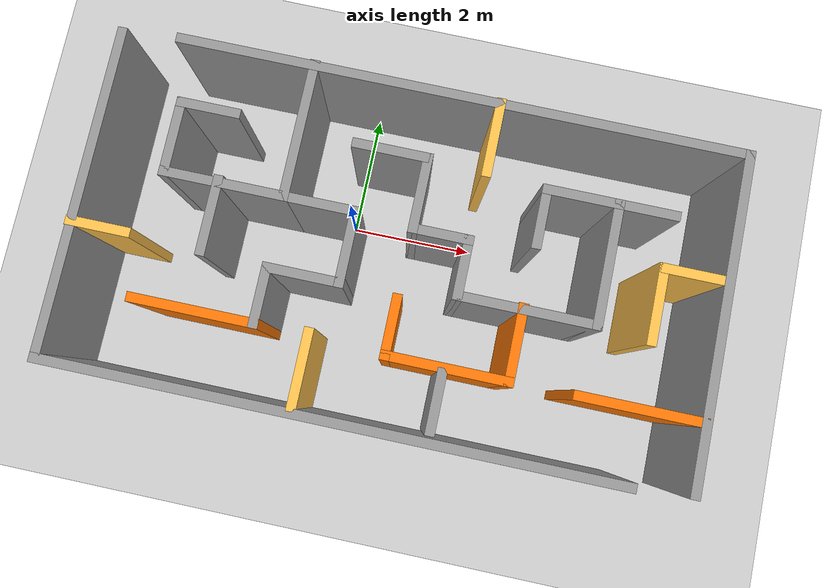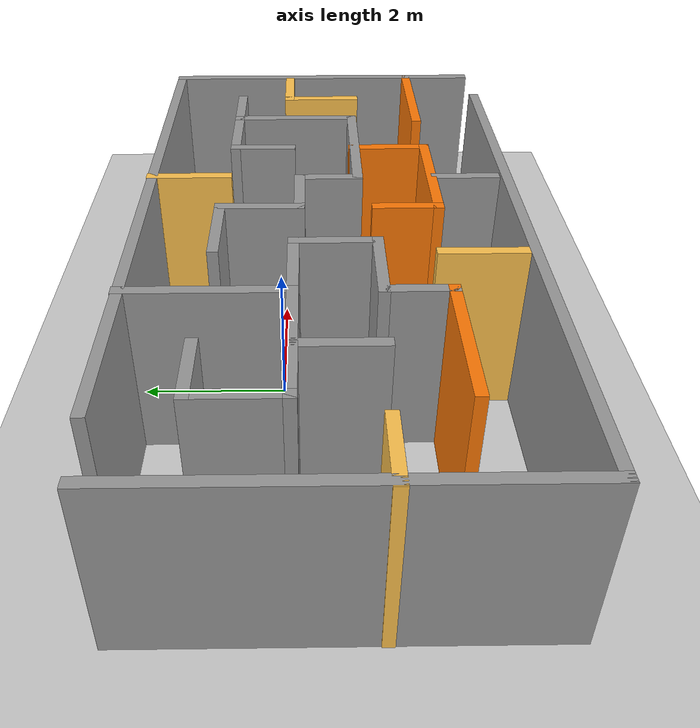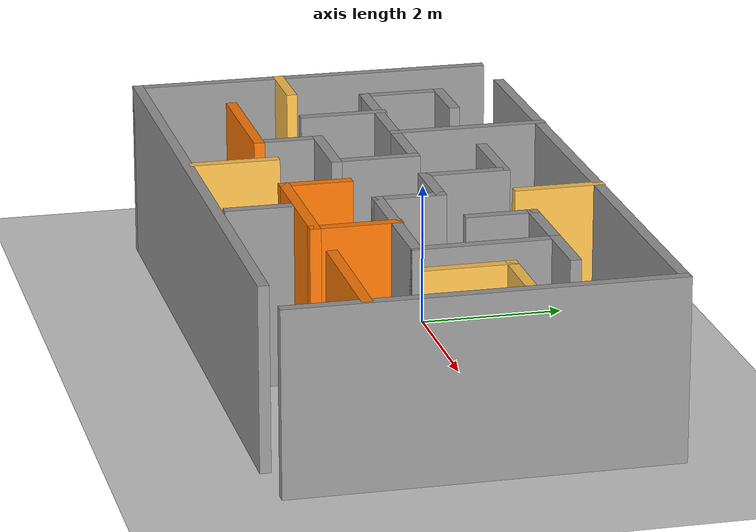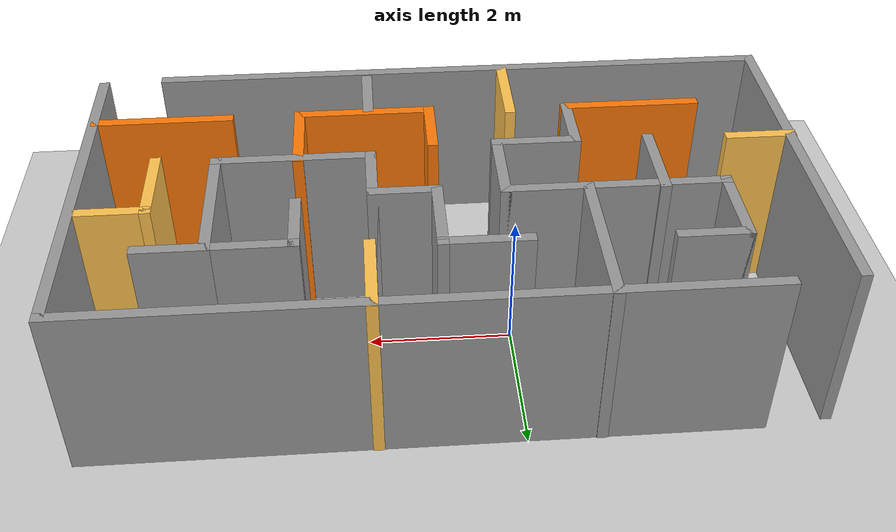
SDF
<sdf version="1.7">
 <world name="default">
  <light name="sun" type="directional">
   <pose>0 0 10 0 -0 0</pose>
   <diffuse>0.8 0.8 0.8 1</diffuse>
   <specular>0.2 0.2 0.2 1</specular>
   <attenuation>
    <range>1000</range>
    <constant>0.9</constant>
    <linear>0.01</linear>
    <quadratic>0.001</quadratic>
   </attenuation>
   <direction>-0.5 0.1 -0.9</direction>
   <spot><inner_angle>0</inner_angle><outer_angle>0</outer_angle><falloff>0</falloff></spot>
  </light>
  <model name="ground_plane">
   <static>1</static>
   <link name="link">
    <collision name="collision">
     <geometry><plane><normal>0 0 1</normal><size>100 100</size></plane></geometry>
     <surface>
      <contact><collide_bitmask>65535</collide_bitmask></contact>
      <friction><ode><mu>100</mu><mu2>50</mu2></ode></friction>
     </surface>
    </collision>
    <visual name="visual">
     <cast_shadows>0</cast_shadows>
     <geometry><plane><normal>0 0 1</normal><size>100 100</size></plane></geometry>
     <material>
      <script><uri>file://media/materials/scripts/gazebo.material</uri><name>Gazebo/Grey</name></script>
     </material>
    </visual>
   </link>
  </model>
  <gravity>0 0 -9.8</gravity>
  <magnetic_field>6e-06 2.3e-05 -4.2e-05</magnetic_field>
  <atmosphere type="adiabatic"/>
  <physics type="ode">
   <max_step_size>0.001</max_step_size>
   <real_time_factor>1</real_time_factor>
   <real_time_update_rate>1000</real_time_update_rate>
  </physics>
  <scene><ambient>0.4 0.4 0.4 1</ambient><background>0.7 0.7 0.7 1</background><shadows>1</shadows></scene>
  <spherical_coordinates>
   <surface_model>EARTH_WGS84</surface_model>
   <latitude_deg>0</latitude_deg>
   <longitude_deg>0</longitude_deg>
   <elevation>0</elevation>
   <heading_deg>0</heading_deg>
  </spherical_coordinates>
  <model name="test_maze">
   <pose>0.885642 -0.663219 0 0 -0 0</pose>
   <link name="Wall_0">
    <collision name="Wall_0_Collision">
     <geometry><box><size>5.25 0.15 2.5</size></box></geometry>
     <pose>0 0 1.25 0 -0 0</pose>
    </collision>
    <visual name="Wall_0_Visual">
     <pose>0 0 1.25 0 -0 0</pose>
     <geometry><box><size>5.25 0.15 2.5</size></box></geometry>
     <material>
      <script><uri>file://media/materials/scripts/gazebo.material</uri><name>Gazebo/Grey</name></script>
      <ambient>1 1 1 1</ambient>
     </material>
     <meta><layer>0</layer></meta>
    </visual>
    <pose>-4.87465 -0.0529 0 0 -0 -1.5708</pose>
   </link>
   <link name="Wall_1">
    <collision name="Wall_1_Collision">
     <geometry><box><size>9 0.15 2.5</size></box></geometry>
     <pose>0 0 1.25 0 -0 0</pose>
    </collision>
    <visual name="Wall_1_Visual">
     <pose>0 0 1.25 0 -0 0</pose>
     <geometry><box><size>9 0.15 2.5</size></box></geometry>
     <material>
      <script><uri>file://media/materials/scripts/gazebo.material</uri><name>Gazebo/Grey</name></script>
      <ambient>1 1 1 1</ambient>
     </material>
     <meta><layer>0</layer></meta>
    </visual>
    <pose>-0.44965 -2.6029 0 0 -0 0</pose>
   </link>
   <link name="Wall_11">
    <collision name="Wall_11_Collision">
     <geometry><box><size>1.25 0.15 2.5</size></box></geometry>
     <pose>0 0 1.25 0 -0 0</pose>
    </collision>
    <visual name="Wall_11_Visual">
     <pose>0 0 1.25 0 -0 0</pose>
     <geometry><box><size>1.25 0.15 2.5</size></box></geometry>
     <material>
      <script><uri>file://media/materials/scripts/gazebo.material</uri><name>Gazebo/Grey</name></script>
      <ambient>1 1 1 1</ambient>
     </material>
     <meta><layer>0</layer></meta>
    </visual>
    <pose>-2.87767 -0.0102 0 0 -0 -1.5708</pose>
   </link>
   <link name="Wall_13">
    <collision name="Wall_13_Collision">
     <geometry><box><size>1.25 0.15 2.5</size></box></geometry>
     <pose>0 0 1.25 0 -0 0</pose>
    </collision>
    <visual name="Wall_13_Visual">
     <pose>0 0 1.25 0 -0 0</pose>
     <geometry><box><size>1.25 0.15 2.5</size></box></geometry>
     <material>
      <script><uri>file://media/materials/scripts/gazebo.material</uri><name>Gazebo/Grey</name></script>
      <ambient>1 1 1 1</ambient>
     </material>
     <meta><layer>0</layer></meta>
    </visual>
    <pose>-1.30935 0.5029 0 0 -0 0</pose>
   </link>
   <link name="Wall_14">
    <collision name="Wall_14_Collision">
     <geometry><box><size>1.25 0.15 2.5</size></box></geometry>
     <pose>0 0 1.25 0 -0 0</pose>
    </collision>
    <visual name="Wall_14_Visual">
     <pose>0 0 1.25 0 -0 0</pose>
     <geometry><box><size>1.25 0.15 2.5</size></box></geometry>
     <material>
      <script><uri>file://media/materials/scripts/gazebo.material</uri><name>Gazebo/Grey</name></script>
      <ambient>1 1 1 1</ambient>
     </material>
     <meta><layer>0</layer></meta>
    </visual>
    <pose>-0.75935 -0.0471 0 0 -0 -1.5708</pose>
   </link>
   <link name="Wall_15">
    <collision name="Wall_15_Collision">
     <geometry><box><size>1.25 0.15 2.5</size></box></geometry>
     <pose>0 0 1.25 0 -0 0</pose>
    </collision>
    <visual name="Wall_15_Visual">
     <pose>0 0 1.25 0 -0 0</pose>
     <geometry><box><size>1.25 0.15 2.5</size></box></geometry>
     <material>
      <script><uri>file://media/materials/scripts/gazebo.material</uri><name>Gazebo/Grey</name></script>
      <ambient>1 1 1 1</ambient>
     </material>
     <meta><layer>0</layer></meta>
    </visual>
    <pose>-1.30935 -0.5971 0 0 -0 3.14159</pose>
   </link>
   <link name="Wall_18">
    <collision name="Wall_18_Collision">
     <geometry><box><size>1 0.15 2.5</size></box></geometry>
     <pose>0 0 1.25 0 -0 0</pose>
    </collision>
    <visual name="Wall_18_Visual">
     <pose>0 0 1.25 0 -0 0</pose>
     <geometry><box><size>1 0.15 2.5</size></box></geometry>
     <material>
      <script><uri>file://media/materials/scripts/gazebo.material</uri><name>Gazebo/Grey</name></script>
      <ambient>1 1 1 1</ambient>
     </material>
     <meta><layer>0</layer></meta>
    </visual>
    <pose>-1.85935 -1.0221 0 0 -0 -1.5708</pose>
   </link>
   <link name="Wall_19">
    <collision name="Wall_19_Collision">
     <geometry><box><size>2 0.15 2.5</size></box></geometry>
     <pose>0 0 1.25 0 -0 0</pose>
    </collision>
    <visual name="Wall_19_Visual">
     <pose>0 0 1.25 0 -0 0</pose>
     <geometry><box><size>2 0.15 2.5</size></box></geometry>
     <material>
      <script><uri>file://media/materials/scripts/gazebo.material</uri><name>Gazebo/Grey</name></script>
      <ambient>0.996078 0.47451 0.0196078 1</ambient>
     </material>
     <meta><layer>0</layer></meta>
    </visual>
    <pose>-2.78435 -1.4471 0 0 -0 3.14159</pose>
   </link>
   <link name="Wall_21">
    <collision name="Wall_21_Collision">
     <geometry><box><size>1 0.15 2.5</size></box></geometry>
     <pose>0 0 1.25 0 -0 0</pose>
    </collision>
    <visual name="Wall_21_Visual">
     <pose>0 0 1.25 0 -0 0</pose>
     <geometry><box><size>1 0.15 2.5</size></box></geometry>
     <material>
      <script><uri>file://media/materials/scripts/gazebo.material</uri><name>Gazebo/Grey</name></script>
      <ambient>1 0.764706 0.305882 1</ambient>
     </material>
     <meta><layer>0</layer></meta>
    </visual>
    <pose>-4.46288 -0.5182 0 0 -0 0</pose>
   </link>
   <link name="Wall_23">
    <collision name="Wall_23_Collision">
     <geometry><box><size>1.25 0.15 2.5</size></box></geometry>
     <pose>0 0 1.25 0 -0 0</pose>
    </collision>
    <visual name="Wall_23_Visual">
     <pose>0 0 1.25 0 -0 0</pose>
     <geometry><box><size>1.25 0.15 2.5</size></box></geometry>
     <material>
      <script><uri>file://media/materials/scripts/gazebo.material</uri><name>Gazebo/Grey</name></script>
      <ambient>1 1 1 1</ambient>
     </material>
     <meta><layer>0</layer></meta>
    </visual>
    <pose>-0.41005 1.53167 0 0 -0 0</pose>
   </link>
   <link name="Wall_24">
    <collision name="Wall_24_Collision">
     <geometry><box><size>1.25 0.15 2.5</size></box></geometry>
     <pose>0 0 1.25 0 -0 0</pose>
    </collision>
    <visual name="Wall_24_Visual">
     <pose>0 0 1.25 0 -0 0</pose>
     <geometry><box><size>1.25 0.15 2.5</size></box></geometry>
     <material>
      <script><uri>file://media/materials/scripts/gazebo.material</uri><name>Gazebo/Grey</name></script>
      <ambient>1 1 1 1</ambient>
     </material>
     <meta><layer>0</layer></meta>
    </visual>
    <pose>0.13995 0.981675 0 0 -0 -1.5708</pose>
   </link>
   <link name="Wall_25">
    <collision name="Wall_25_Collision">
     <geometry><box><size>1 0.15 2.5</size></box></geometry>
     <pose>0 0 1.25 0 -0 0</pose>
    </collision>
    <visual name="Wall_25_Visual">
     <pose>0 0 1.25 0 -0 0</pose>
     <geometry><box><size>1 0.15 2.5</size></box></geometry>
     <material>
      <script><uri>file://media/materials/scripts/gazebo.material</uri><name>Gazebo/Grey</name></script>
      <ambient>1 1 1 1</ambient>
     </material>
     <meta><layer>0</layer></meta>
    </visual>
    <pose>0.56495 0.431675 0 0 -0 0</pose>
   </link>
   <link name="Wall_26">
    <collision name="Wall_26_Collision">
     <geometry><box><size>1 0.15 2.5</size></box></geometry>
     <pose>0 0 1.25 0 -0 0</pose>
    </collision>
    <visual name="Wall_26_Visual">
     <pose>0 0 1.25 0 -0 0</pose>
     <geometry><box><size>1 0.15 2.5</size></box></geometry>
     <material>
      <script><uri>file://media/materials/scripts/gazebo.material</uri><name>Gazebo/Grey</name></script>
      <ambient>1 1 1 1</ambient>
     </material>
     <meta><layer>0</layer></meta>
    </visual>
    <pose>0.98995 0.006675 0 0 -0 -1.5708</pose>
   </link>
   <link name="Wall_27">
    <collision name="Wall_27_Collision">
     <geometry><box><size>2.25 0.15 2.5</size></box></geometry>
     <pose>0 0 1.25 0 -0 0</pose>
    </collision>
    <visual name="Wall_27_Visual">
     <pose>0 0 1.25 0 -0 0</pose>
     <geometry><box><size>2.25 0.15 2.5</size></box></geometry>
     <material>
      <script><uri>file://media/materials/scripts/gazebo.material</uri><name>Gazebo/Grey</name></script>
      <ambient>1 1 1 1</ambient>
     </material>
     <meta><layer>0</layer></meta>
    </visual>
    <pose>2.03995 -0.418325 0 0 -0 0</pose>
   </link>
   <link name="Wall_28">
    <collision name="Wall_28_Collision">
     <geometry><box><size>2 0.15 2.5</size></box></geometry>
     <pose>0 0 1.25 0 -0 0</pose>
    </collision>
    <visual name="Wall_28_Visual">
     <pose>0 0 1.25 0 -0 0</pose>
     <geometry><box><size>2 0.15 2.5</size></box></geometry>
     <material>
      <script><uri>file://media/materials/scripts/gazebo.material</uri><name>Gazebo/Grey</name></script>
      <ambient>1 1 1 1</ambient>
     </material>
     <meta><layer>0</layer></meta>
    </visual>
    <pose>3.08995 0.506675 0 0 -0 1.5708</pose>
   </link>
   <link name="Wall_29">
    <collision name="Wall_29_Collision">
     <geometry><box><size>1 0.15 2.5</size></box></geometry>
     <pose>0 0 1.25 0 -0 0</pose>
    </collision>
    <visual name="Wall_29_Visual">
     <pose>0 0 1.25 0 -0 0</pose>
     <geometry><box><size>1 0.15 2.5</size></box></geometry>
     <material>
      <script><uri>file://media/materials/scripts/gazebo.material</uri><name>Gazebo/Grey</name></script>
      <ambient>1 1 1 1</ambient>
     </material>
     <meta><layer>0</layer></meta>
    </visual>
    <pose>3.51495 1.43168 0 0 -0 0</pose>
   </link>
   <link name="Wall_3">
    <collision name="Wall_3_Collision">
     <geometry><box><size>9 0.15 2.5</size></box></geometry>
     <pose>0 0 1.25 0 -0 0</pose>
    </collision>
    <visual name="Wall_3_Visual">
     <pose>0 0 1.25 0 -0 0</pose>
     <geometry><box><size>9 0.15 2.5</size></box></geometry>
     <material>
      <script><uri>file://media/materials/scripts/gazebo.material</uri><name>Gazebo/Grey</name></script>
      <ambient>1 1 1 1</ambient>
     </material>
     <meta><layer>0</layer></meta>
    </visual>
    <pose>0.462875 2.58968 0 0 -0 0</pose>
   </link>
   <link name="Wall_31">
    <collision name="Wall_31_Collision">
     <geometry><box><size>1.25 0.15 2.5</size></box></geometry>
     <pose>0 0 1.25 0 -0 0</pose>
    </collision>
    <visual name="Wall_31_Visual">
     <pose>0 0 1.25 0 -0 0</pose>
     <geometry><box><size>1.25 0.15 2.5</size></box></geometry>
     <material>
      <script><uri>file://media/materials/scripts/gazebo.material</uri><name>Gazebo/Grey</name></script>
      <ambient>1 1 1 1</ambient>
     </material>
     <meta><layer>0</layer></meta>
    </visual>
    <pose>2.53995 1.43168 0 0 -0 3.14159</pose>
   </link>
   <link name="Wall_32">
    <collision name="Wall_32_Collision">
     <geometry><box><size>1 0.15 2.5</size></box></geometry>
     <pose>0 0 1.25 0 -0 0</pose>
    </collision>
    <visual name="Wall_32_Visual">
     <pose>0 0 1.25 0 -0 0</pose>
     <geometry><box><size>1 0.15 2.5</size></box></geometry>
     <material>
      <script><uri>file://media/materials/scripts/gazebo.material</uri><name>Gazebo/Grey</name></script>
      <ambient>1 1 1 1</ambient>
     </material>
     <meta><layer>0</layer></meta>
    </visual>
    <pose>1.98995 1.00667 0 0 -0 -1.5708</pose>
   </link>
   <link name="Wall_34">
    <collision name="Wall_34_Collision">
     <geometry><box><size>1.25 0.15 2.5</size></box></geometry>
     <pose>0 0 1.25 0 -0 0</pose>
    </collision>
    <visual name="Wall_34_Visual">
     <pose>0 0 1.25 0 -0 0</pose>
     <geometry><box><size>1.25 0.15 2.5</size></box></geometry>
     <material>
      <script><uri>file://media/materials/scripts/gazebo.material</uri><name>Gazebo/Grey</name></script>
      <ambient>0.996078 0.47451 0.0196078 1</ambient>
     </material>
     <meta><layer>0</layer></meta>
    </visual>
    <pose>1.9759 -0.949175 0 0 -0 -1.5708</pose>
   </link>
   <link name="Wall_35">
    <collision name="Wall_35_Collision">
     <geometry><box><size>2 0.15 2.5</size></box></geometry>
     <pose>0 0 1.25 0 -0 0</pose>
    </collision>
    <visual name="Wall_35_Visual">
     <pose>0 0 1.25 0 -0 0</pose>
     <geometry><box><size>2 0.15 2.5</size></box></geometry>
     <material>
      <script><uri>file://media/materials/scripts/gazebo.material</uri><name>Gazebo/Grey</name></script>
      <ambient>0.996078 0.47451 0.0196078 1</ambient>
     </material>
     <meta><layer>0</layer></meta>
    </visual>
    <pose>1.0509 -1.49917 0 0 -0 3.14159</pose>
   </link>
   <link name="Wall_36">
    <collision name="Wall_36_Collision">
     <geometry><box><size>1 0.15 2.5</size></box></geometry>
     <pose>0 0 1.25 0 -0 0</pose>
    </collision>
    <visual name="Wall_36_Visual">
     <pose>0 0 1.25 0 -0 0</pose>
     <geometry><box><size>1 0.15 2.5</size></box></geometry>
     <material>
      <script><uri>file://media/materials/scripts/gazebo.material</uri><name>Gazebo/Grey</name></script>
      <ambient>0.996078 0.47451 0.0196078 1</ambient>
     </material>
     <meta><layer>0</layer></meta>
    </visual>
    <pose>0.1259 -1.07418 0 0 -0 1.5708</pose>
   </link>
   <link name="Wall_4">
    <collision name="Wall_4_Collision">
     <geometry><box><size>5.25 0.15 2.5</size></box></geometry>
     <pose>0 0 1.25 0 -0 0</pose>
    </collision>
    <visual name="Wall_4_Visual">
     <pose>0 0 1.25 0 -0 0</pose>
     <geometry><box><size>5.25 0.15 2.5</size></box></geometry>
     <material>
      <script><uri>file://media/materials/scripts/gazebo.material</uri><name>Gazebo/Grey</name></script>
      <ambient>1 1 1 1</ambient>
     </material>
     <meta><layer>0</layer></meta>
    </visual>
    <pose>4.88788 0.039675 0 0 -0 -1.5708</pose>
   </link>
   <link name="Wall_40">
    <collision name="Wall_40_Collision">
     <geometry><box><size>1.25 0.15 2.5</size></box></geometry>
     <pose>0 0 1.25 0 -0 0</pose>
    </collision>
    <visual name="Wall_40_Visual">
     <pose>0 0 1.25 0 -0 0</pose>
     <geometry><box><size>1.25 0.15 2.5</size></box></geometry>
     <material>
      <script><uri>file://media/materials/scripts/gazebo.material</uri><name>Gazebo/Grey</name></script>
      <ambient>1 0.764706 0.305882 1</ambient>
     </material>
     <meta><layer>0</layer></meta>
    </visual>
    <pose>3.90675 0.071475 0 0 -0 1.5708</pose>
   </link>
   <link name="Wall_41">
    <collision name="Wall_41_Collision">
     <geometry><box><size>1 0.15 2.5</size></box></geometry>
     <pose>0 0 1.25 0 -0 0</pose>
    </collision>
    <visual name="Wall_41_Visual">
     <pose>0 0 1.25 0 -0 0</pose>
     <geometry><box><size>1 0.15 2.5</size></box></geometry>
     <material>
      <script><uri>file://media/materials/scripts/gazebo.material</uri><name>Gazebo/Grey</name></script>
      <ambient>1 0.764706 0.305882 1</ambient>
     </material>
     <meta><layer>0</layer></meta>
    </visual>
    <pose>4.33175 0.621475 0 0 -0 0</pose>
   </link>
   <link name="Wall_43">
    <collision name="Wall_43_Collision">
     <geometry><box><size>2 0.15 2.5</size></box></geometry>
     <pose>0 0 1.25 0 -0 0</pose>
    </collision>
    <visual name="Wall_43_Visual">
     <pose>0 0 1.25 0 -0 0</pose>
     <geometry><box><size>2 0.15 2.5</size></box></geometry>
     <material>
      <script><uri>file://media/materials/scripts/gazebo.material</uri><name>Gazebo/Grey</name></script>
      <ambient>0.996078 0.47451 0.0196078 1</ambient>
     </material>
     <meta><layer>0</layer></meta>
    </visual>
    <pose>3.91922 -1.48362 0 0 -0 0</pose>
   </link>
   <link name="Wall_45">
    <collision name="Wall_45_Collision">
     <geometry><box><size>1.25 0.15 2.5</size></box></geometry>
     <pose>0 0 1.25 0 -0 0</pose>
    </collision>
    <visual name="Wall_45_Visual">
     <pose>0 0 1.25 0 -0 0</pose>
     <geometry><box><size>1.25 0.15 2.5</size></box></geometry>
     <material>
      <script><uri>file://media/materials/scripts/gazebo.material</uri><name>Gazebo/Grey</name></script>
      <ambient>1 0.764706 0.305882 1</ambient>
     </material>
     <meta><layer>0</layer></meta>
    </visual>
    <pose>-1.0394 -1.95427 0 0 -0 -1.5708</pose>
   </link>
   <link name="Wall_47">
    <collision name="Wall_47_Collision">
     <geometry><box><size>1 0.15 2.5</size></box></geometry>
     <pose>0 0 1.25 0 -0 0</pose>
    </collision>
    <visual name="Wall_47_Visual">
     <pose>0 0 1.25 0 -0 0</pose>
     <geometry><box><size>1 0.15 2.5</size></box></geometry>
     <material>
      <script><uri>file://media/materials/scripts/gazebo.material</uri><name>Gazebo/Grey</name></script>
      <ambient>1 1 1 1</ambient>
     </material>
     <meta><layer>0</layer></meta>
    </visual>
    <pose>0.99725 -2.0012 0 0 -0 -1.5708</pose>
   </link>
   <link name="Wall_49">
    <collision name="Wall_49_Collision">
     <geometry><box><size>1.25 0.15 2.5</size></box></geometry>
     <pose>0 0 1.25 0 -0 0</pose>
    </collision>
    <visual name="Wall_49_Visual">
     <pose>0 0 1.25 0 -0 0</pose>
     <geometry><box><size>1.25 0.15 2.5</size></box></geometry>
     <material>
      <script><uri>file://media/materials/scripts/gazebo.material</uri><name>Gazebo/Grey</name></script>
      <ambient>1 0.764706 0.305882 1</ambient>
     </material>
     <meta><layer>0</layer></meta>
    </visual>
    <pose>1.05015 2.0529 0 0 -0 -1.5708</pose>
   </link>
   <link name="Wall_6">
    <collision name="Wall_6_Collision">
     <geometry><box><size>2.25 0.15 2.5</size></box></geometry>
     <pose>0 0 1.25 0 -0 0</pose>
    </collision>
    <visual name="Wall_6_Visual">
     <pose>0 0 1.25 0 -0 0</pose>
     <geometry><box><size>2.25 0.15 2.5</size></box></geometry>
     <material>
      <script><uri>file://media/materials/scripts/gazebo.material</uri><name>Gazebo/Grey</name></script>
      <ambient>1 1 1 1</ambient>
     </material>
     <meta><layer>0</layer></meta>
    </visual>
    <pose>-1.85935 1.5529 0 0 -0 -1.5708</pose>
   </link>
   <link name="Wall_7">
    <collision name="Wall_7_Collision">
     <geometry><box><size>2 0.15 2.5</size></box></geometry>
     <pose>0 0 1.25 0 -0 0</pose>
    </collision>
    <visual name="Wall_7_Visual">
     <pose>0 0 1.25 0 -0 0</pose>
     <geometry><box><size>2 0.15 2.5</size></box></geometry>
     <material>
      <script><uri>file://media/materials/scripts/gazebo.material</uri><name>Gazebo/Grey</name></script>
      <ambient>1 1 1 1</ambient>
     </material>
     <meta><layer>0</layer></meta>
    </visual>
    <pose>-2.78435 0.5029 0 0 -0 3.14159</pose>
   </link>
   <link name="Wall_8">
    <collision name="Wall_8_Collision">
     <geometry><box><size>1.25 0.15 2.5</size></box></geometry>
     <pose>0 0 1.25 0 -0 0</pose>
    </collision>
    <visual name="Wall_8_Visual">
     <pose>0 0 1.25 0 -0 0</pose>
     <geometry><box><size>1.25 0.15 2.5</size></box></geometry>
     <material>
      <script><uri>file://media/materials/scripts/gazebo.material</uri><name>Gazebo/Grey</name></script>
      <ambient>1 1 1 1</ambient>
     </material>
     <meta><layer>0</layer></meta>
    </visual>
    <pose>-3.70935 1.0529 0 0 -0 1.5708</pose>
   </link>
   <link name="Wall_9">
    <collision name="Wall_9_Collision">
     <geometry><box><size>1 0.15 2.5</size></box></geometry>
     <pose>0 0 1.25 0 -0 0</pose>
    </collision>
    <visual name="Wall_9_Visual">
     <pose>0 0 1.25 0 -0 0</pose>
     <geometry><box><size>1 0.15 2.5</size></box></geometry>
     <material>
      <script><uri>file://media/materials/scripts/gazebo.material</uri><name>Gazebo/Grey</name></script>
      <ambient>1 1 1 1</ambient>
     </material>
     <meta><layer>0</layer></meta>
    </visual>
    <pose>-3.28435 1.6029 0 0 -0 0</pose>
   </link>
   <static>1</static>
  </model>
 </world>
</sdf>
